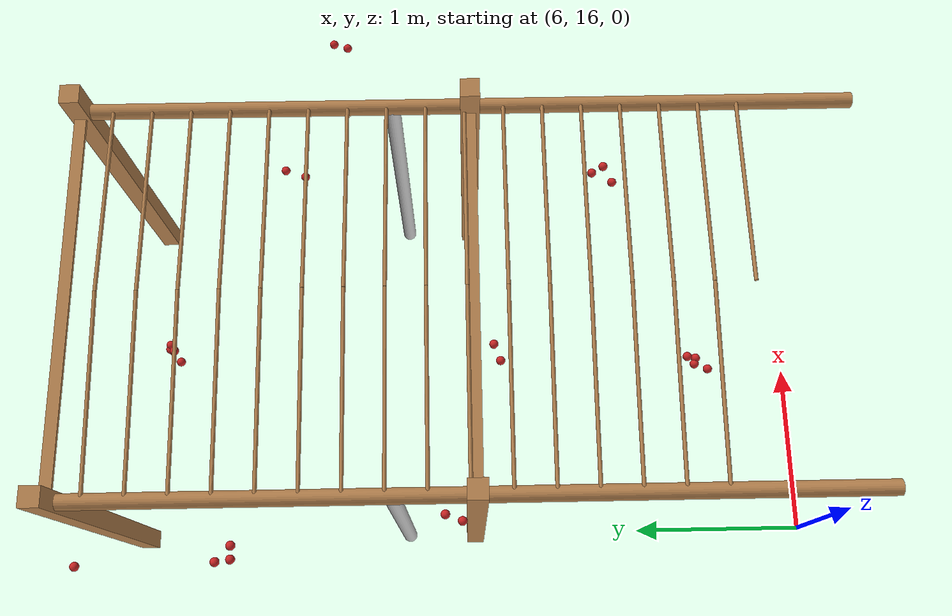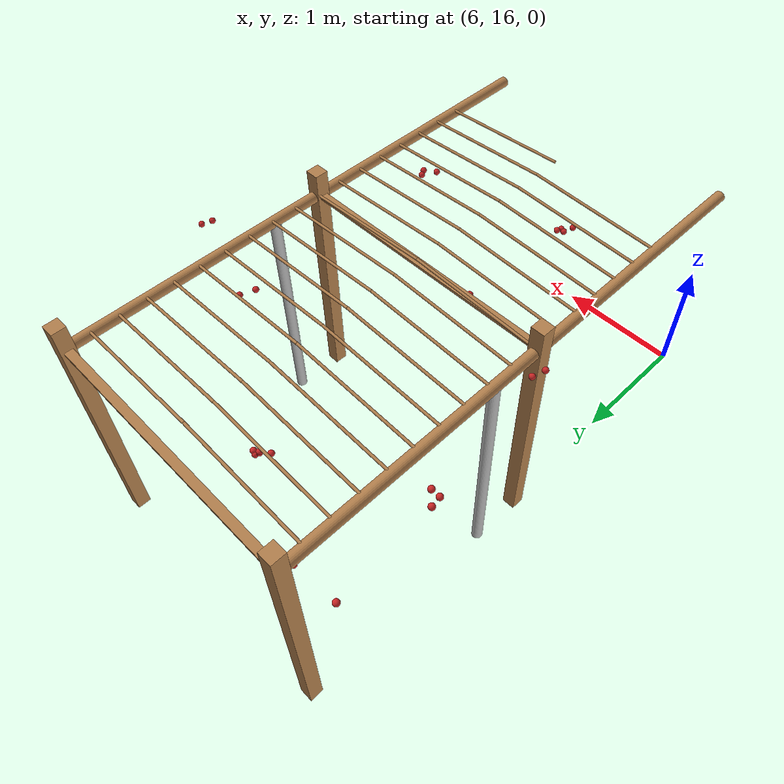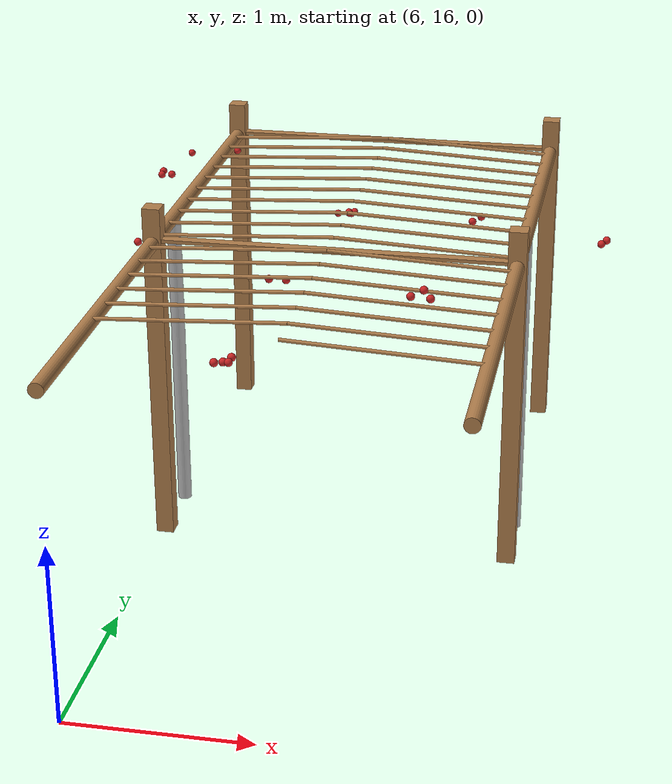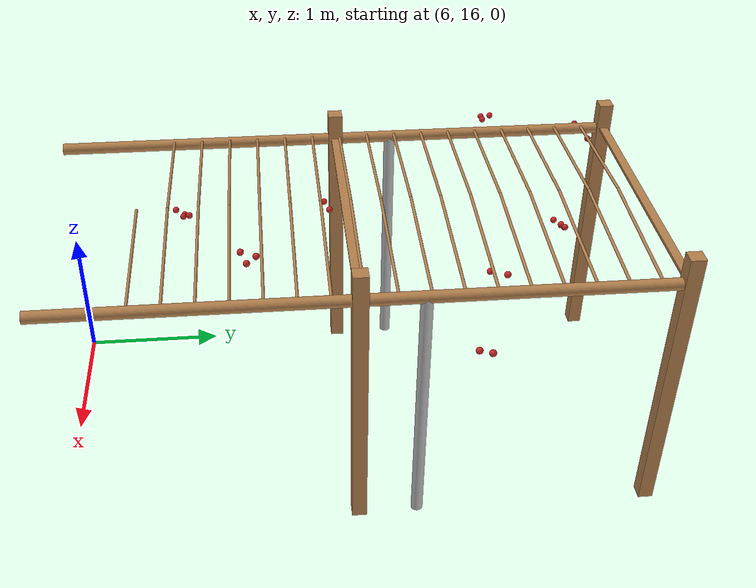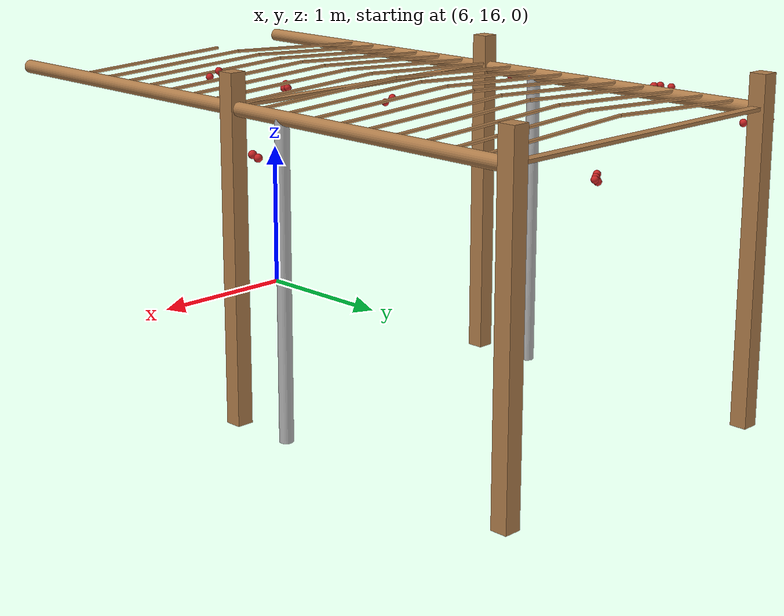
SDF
<sdf version="1.4">
 <model name="pergola">
  <include><name>post_42</name><pose>6.0 18.0 0 0 0 0</pose><uri>model://post</uri></include>
  <include><name>post_43</name><pose>6.0 20.0 0 0 0 0</pose><uri>model://post</uri></include>
  <include><name>post_53</name><pose>8.0 18.0 0 0 0 0</pose><uri>model://post</uri></include>
  <include><name>post_54</name><pose>8.0 20.0 0 0 0 0</pose><uri>model://post</uri></include>
  <link name="beam_42">
   <pose>7.0 18.0 1.81 0 0 0</pose>
   <collision name="collision"><geometry><box><size>2.0 0.06 0.02</size></box></geometry></collision>
   <visual name="visual">
    <geometry><box><size>2.0 0.06 0.02</size></box></geometry>
    <material><script><name>Gazebo/Wood</name></script></material>
   </visual>
   <inertial>
    <mass>5</mass>
    <inertia>
     <ixx>0.0016666666666666668</ixx>
     <ixy>0.0</ixy>
     <ixz>0.0</ixz>
     <iyy>1.6681666666666664</iyy>
     <iyz>0.0</iyz>
     <izz>1.6668333333333332</izz>
    </inertia>
   </inertial>
  </link>
  <link name="beam_43">
   <pose>7.0 20.0 1.81 0 0 0</pose>
   <collision name="collision"><geometry><box><size>2.0 0.06 0.02</size></box></geometry></collision>
   <visual name="visual">
    <geometry><box><size>2.0 0.06 0.02</size></box></geometry>
    <material><script><name>Gazebo/Wood</name></script></material>
   </visual>
   <inertial>
    <mass>5</mass>
    <inertia>
     <ixx>0.0016666666666666668</ixx>
     <ixy>0.0</ixy>
     <ixz>0.0</ixz>
     <iyy>1.6681666666666664</iyy>
     <iyz>0.0</iyz>
     <izz>1.6668333333333332</izz>
    </inertia>
   </inertial>
  </link>
  <include><name>tree_39</name><pose>6.0 18.4 0 0 0 0</pose><uri>model://tree_trunk</uri></include>
  <include><name>tree_49</name><pose>8.0 18.4 0 0 0 0</pose><uri>model://tree_trunk</uri></include>
  <link name="baseBranch_38">
   <pose>6.0 17.0 1.8 1.5707963267948966 0 0</pose>
   <collision name="collision">
    <geometry><cylinder><radius>0.04</radius><length>1.94</length></cylinder></geometry>
   </collision>
   <visual name="visual">
    <geometry><cylinder><radius>0.04</radius><length>1.94</length></cylinder></geometry>
    <material><script><name>Gazebo/WoodFloor</name></script></material>
   </visual>
   <inertial>
    <mass>10</mass>
    <inertia>
     <ixx>3.140333333333333</ixx>
     <ixy>0.0</ixy>
     <ixz>0.0</ixz>
     <iyy>3.140333333333333</iyy>
     <iyz>0.0</iyz>
     <izz>0.008</izz>
    </inertia>
   </inertial>
  </link>
  <link name="baseBranch_39">
   <pose>6.0 19.0 1.8 1.5707963267948966 0 0</pose>
   <collision name="collision">
    <geometry><cylinder><radius>0.04</radius><length>1.94</length></cylinder></geometry>
   </collision>
   <visual name="visual">
    <geometry><cylinder><radius>0.04</radius><length>1.94</length></cylinder></geometry>
    <material><script><name>Gazebo/WoodFloor</name></script></material>
   </visual>
   <inertial>
    <mass>10</mass>
    <inertia>
     <ixx>3.140333333333333</ixx>
     <ixy>0.0</ixy>
     <ixz>0.0</ixz>
     <iyy>3.140333333333333</iyy>
     <iyz>0.0</iyz>
     <izz>0.008</izz>
    </inertia>
   </inertial>
  </link>
  <link name="baseBranch_48">
   <pose>8.0 17.0 1.8 1.5707963267948966 0 0</pose>
   <collision name="collision">
    <geometry><cylinder><radius>0.04</radius><length>1.94</length></cylinder></geometry>
   </collision>
   <visual name="visual">
    <geometry><cylinder><radius>0.04</radius><length>1.94</length></cylinder></geometry>
    <material><script><name>Gazebo/WoodFloor</name></script></material>
   </visual>
   <inertial>
    <mass>10</mass>
    <inertia>
     <ixx>3.140333333333333</ixx>
     <ixy>0.0</ixy>
     <ixz>0.0</ixz>
     <iyy>3.140333333333333</iyy>
     <iyz>0.0</iyz>
     <izz>0.008</izz>
    </inertia>
   </inertial>
  </link>
  <link name="baseBranch_49">
   <pose>8.0 19.0 1.8 1.5707963267948966 0 0</pose>
   <collision name="collision">
    <geometry><cylinder><radius>0.04</radius><length>1.94</length></cylinder></geometry>
   </collision>
   <visual name="visual">
    <geometry><cylinder><radius>0.04</radius><length>1.94</length></cylinder></geometry>
    <material><script><name>Gazebo/WoodFloor</name></script></material>
   </visual>
   <inertial>
    <mass>10</mass>
    <inertia>
     <ixx>3.140333333333333</ixx>
     <ixy>0.0</ixy>
     <ixz>0.0</ixz>
     <iyy>3.140333333333333</iyy>
     <iyz>0.0</iyz>
     <izz>0.008</izz>
    </inertia>
   </inertial>
  </link>
  <link name="vine_767">
   <pose>7.5 16.630000000000003 1.85 0 -1.5208379310729538 0</pose>
   <collision name="collision">
    <geometry><cylinder><radius>0.01</radius><length>1.0012492197250393</length></cylinder></geometry>
   </collision>
   <visual name="visual">
    <geometry><cylinder><radius>0.01</radius><length>1.0012492197250393</length></cylinder></geometry>
    <material><script><name>Gazebo/WoodFloor</name></script></material>
   </visual>
   <inertial>
    <mass>5</mass>
    <inertia>
     <ixx>0.41783333333333345</ixx>
     <ixy>0.0</ixy>
     <ixz>0.0</ixz>
     <iyy>0.41783333333333345</iyy>
     <iyz>0.0</iyz>
     <izz>0.00025</izz>
    </inertia>
   </inertial>
  </link>
  <link name="vine_768">
   <pose>6.5 16.830000000000002 1.85 0 1.5208379310729538 0</pose>
   <collision name="collision">
    <geometry><cylinder><radius>0.01</radius><length>1.0012492197250393</length></cylinder></geometry>
   </collision>
   <visual name="visual">
    <geometry><cylinder><radius>0.01</radius><length>1.0012492197250393</length></cylinder></geometry>
    <material><script><name>Gazebo/WoodFloor</name></script></material>
   </visual>
   <inertial>
    <mass>5</mass>
    <inertia>
     <ixx>0.41783333333333345</ixx>
     <ixy>0.0</ixy>
     <ixz>0.0</ixz>
     <iyy>0.41783333333333345</iyy>
     <iyz>0.0</iyz>
     <izz>0.00025</izz>
    </inertia>
   </inertial>
  </link>
  <link name="vine_769">
   <pose>7.5 16.830000000000002 1.85 0 -1.5208379310729538 0</pose>
   <collision name="collision">
    <geometry><cylinder><radius>0.01</radius><length>1.0012492197250393</length></cylinder></geometry>
   </collision>
   <visual name="visual">
    <geometry><cylinder><radius>0.01</radius><length>1.0012492197250393</length></cylinder></geometry>
    <material><script><name>Gazebo/WoodFloor</name></script></material>
   </visual>
   <inertial>
    <mass>5</mass>
    <inertia>
     <ixx>0.41783333333333345</ixx>
     <ixy>0.0</ixy>
     <ixz>0.0</ixz>
     <iyy>0.41783333333333345</iyy>
     <iyz>0.0</iyz>
     <izz>0.00025</izz>
    </inertia>
   </inertial>
  </link>
  <link name="vine_770">
   <pose>6.5 17.03 1.85 0 1.5208379310729538 0</pose>
   <collision name="collision">
    <geometry><cylinder><radius>0.01</radius><length>1.0012492197250393</length></cylinder></geometry>
   </collision>
   <visual name="visual">
    <geometry><cylinder><radius>0.01</radius><length>1.0012492197250393</length></cylinder></geometry>
    <material><script><name>Gazebo/WoodFloor</name></script></material>
   </visual>
   <inertial>
    <mass>5</mass>
    <inertia>
     <ixx>0.41783333333333345</ixx>
     <ixy>0.0</ixy>
     <ixz>0.0</ixz>
     <iyy>0.41783333333333345</iyy>
     <iyz>0.0</iyz>
     <izz>0.00025</izz>
    </inertia>
   </inertial>
  </link>
  <link name="vine_771">
   <pose>7.5 17.03 1.85 0 -1.5208379310729538 0</pose>
   <collision name="collision">
    <geometry><cylinder><radius>0.01</radius><length>1.0012492197250393</length></cylinder></geometry>
   </collision>
   <visual name="visual">
    <geometry><cylinder><radius>0.01</radius><length>1.0012492197250393</length></cylinder></geometry>
    <material><script><name>Gazebo/WoodFloor</name></script></material>
   </visual>
   <inertial>
    <mass>5</mass>
    <inertia>
     <ixx>0.41783333333333345</ixx>
     <ixy>0.0</ixy>
     <ixz>0.0</ixz>
     <iyy>0.41783333333333345</iyy>
     <iyz>0.0</iyz>
     <izz>0.00025</izz>
    </inertia>
   </inertial>
  </link>
  <link name="vine_772">
   <pose>6.5 17.23 1.85 0 1.5208379310729538 0</pose>
   <collision name="collision">
    <geometry><cylinder><radius>0.01</radius><length>1.0012492197250393</length></cylinder></geometry>
   </collision>
   <visual name="visual">
    <geometry><cylinder><radius>0.01</radius><length>1.0012492197250393</length></cylinder></geometry>
    <material><script><name>Gazebo/WoodFloor</name></script></material>
   </visual>
   <inertial>
    <mass>5</mass>
    <inertia>
     <ixx>0.41783333333333345</ixx>
     <ixy>0.0</ixy>
     <ixz>0.0</ixz>
     <iyy>0.41783333333333345</iyy>
     <iyz>0.0</iyz>
     <izz>0.00025</izz>
    </inertia>
   </inertial>
  </link>
  <link name="vine_773">
   <pose>7.5 17.23 1.85 0 -1.5208379310729538 0</pose>
   <collision name="collision">
    <geometry><cylinder><radius>0.01</radius><length>1.0012492197250393</length></cylinder></geometry>
   </collision>
   <visual name="visual">
    <geometry><cylinder><radius>0.01</radius><length>1.0012492197250393</length></cylinder></geometry>
    <material><script><name>Gazebo/WoodFloor</name></script></material>
   </visual>
   <inertial>
    <mass>5</mass>
    <inertia>
     <ixx>0.41783333333333345</ixx>
     <ixy>0.0</ixy>
     <ixz>0.0</ixz>
     <iyy>0.41783333333333345</iyy>
     <iyz>0.0</iyz>
     <izz>0.00025</izz>
    </inertia>
   </inertial>
  </link>
  <link name="vine_774">
   <pose>6.5 17.430000000000003 1.85 0 1.5208379310729538 0</pose>
   <collision name="collision">
    <geometry><cylinder><radius>0.01</radius><length>1.0012492197250393</length></cylinder></geometry>
   </collision>
   <visual name="visual">
    <geometry><cylinder><radius>0.01</radius><length>1.0012492197250393</length></cylinder></geometry>
    <material><script><name>Gazebo/WoodFloor</name></script></material>
   </visual>
   <inertial>
    <mass>5</mass>
    <inertia>
     <ixx>0.41783333333333345</ixx>
     <ixy>0.0</ixy>
     <ixz>0.0</ixz>
     <iyy>0.41783333333333345</iyy>
     <iyz>0.0</iyz>
     <izz>0.00025</izz>
    </inertia>
   </inertial>
  </link>
  <link name="vine_775">
   <pose>7.5 17.430000000000003 1.85 0 -1.5208379310729538 0</pose>
   <collision name="collision">
    <geometry><cylinder><radius>0.01</radius><length>1.0012492197250393</length></cylinder></geometry>
   </collision>
   <visual name="visual">
    <geometry><cylinder><radius>0.01</radius><length>1.0012492197250393</length></cylinder></geometry>
    <material><script><name>Gazebo/WoodFloor</name></script></material>
   </visual>
   <inertial>
    <mass>5</mass>
    <inertia>
     <ixx>0.41783333333333345</ixx>
     <ixy>0.0</ixy>
     <ixz>0.0</ixz>
     <iyy>0.41783333333333345</iyy>
     <iyz>0.0</iyz>
     <izz>0.00025</izz>
    </inertia>
   </inertial>
  </link>
  <link name="vine_776">
   <pose>6.5 17.630000000000003 1.85 0 1.5208379310729538 0</pose>
   <collision name="collision">
    <geometry><cylinder><radius>0.01</radius><length>1.0012492197250393</length></cylinder></geometry>
   </collision>
   <visual name="visual">
    <geometry><cylinder><radius>0.01</radius><length>1.0012492197250393</length></cylinder></geometry>
    <material><script><name>Gazebo/WoodFloor</name></script></material>
   </visual>
   <inertial>
    <mass>5</mass>
    <inertia>
     <ixx>0.41783333333333345</ixx>
     <ixy>0.0</ixy>
     <ixz>0.0</ixz>
     <iyy>0.41783333333333345</iyy>
     <iyz>0.0</iyz>
     <izz>0.00025</izz>
    </inertia>
   </inertial>
  </link>
  <link name="vine_777">
   <pose>7.5 17.630000000000003 1.85 0 -1.5208379310729538 0</pose>
   <collision name="collision">
    <geometry><cylinder><radius>0.01</radius><length>1.0012492197250393</length></cylinder></geometry>
   </collision>
   <visual name="visual">
    <geometry><cylinder><radius>0.01</radius><length>1.0012492197250393</length></cylinder></geometry>
    <material><script><name>Gazebo/WoodFloor</name></script></material>
   </visual>
   <inertial>
    <mass>5</mass>
    <inertia>
     <ixx>0.41783333333333345</ixx>
     <ixy>0.0</ixy>
     <ixz>0.0</ixz>
     <iyy>0.41783333333333345</iyy>
     <iyz>0.0</iyz>
     <izz>0.00025</izz>
    </inertia>
   </inertial>
  </link>
  <link name="vine_778">
   <pose>6.5 17.830000000000002 1.85 0 1.5208379310729538 0</pose>
   <collision name="collision">
    <geometry><cylinder><radius>0.01</radius><length>1.0012492197250393</length></cylinder></geometry>
   </collision>
   <visual name="visual">
    <geometry><cylinder><radius>0.01</radius><length>1.0012492197250393</length></cylinder></geometry>
    <material><script><name>Gazebo/WoodFloor</name></script></material>
   </visual>
   <inertial>
    <mass>5</mass>
    <inertia>
     <ixx>0.41783333333333345</ixx>
     <ixy>0.0</ixy>
     <ixz>0.0</ixz>
     <iyy>0.41783333333333345</iyy>
     <iyz>0.0</iyz>
     <izz>0.00025</izz>
    </inertia>
   </inertial>
  </link>
  <link name="vine_779">
   <pose>7.5 17.830000000000002 1.85 0 -1.5208379310729538 0</pose>
   <collision name="collision">
    <geometry><cylinder><radius>0.01</radius><length>1.0012492197250393</length></cylinder></geometry>
   </collision>
   <visual name="visual">
    <geometry><cylinder><radius>0.01</radius><length>1.0012492197250393</length></cylinder></geometry>
    <material><script><name>Gazebo/WoodFloor</name></script></material>
   </visual>
   <inertial>
    <mass>5</mass>
    <inertia>
     <ixx>0.41783333333333345</ixx>
     <ixy>0.0</ixy>
     <ixz>0.0</ixz>
     <iyy>0.41783333333333345</iyy>
     <iyz>0.0</iyz>
     <izz>0.00025</izz>
    </inertia>
   </inertial>
  </link>
  <link name="vine_780">
   <pose>6.5 18.03 1.85 0 1.5208379310729538 0</pose>
   <collision name="collision">
    <geometry><cylinder><radius>0.01</radius><length>1.0012492197250393</length></cylinder></geometry>
   </collision>
   <visual name="visual">
    <geometry><cylinder><radius>0.01</radius><length>1.0012492197250393</length></cylinder></geometry>
    <material><script><name>Gazebo/WoodFloor</name></script></material>
   </visual>
   <inertial>
    <mass>5</mass>
    <inertia>
     <ixx>0.41783333333333345</ixx>
     <ixy>0.0</ixy>
     <ixz>0.0</ixz>
     <iyy>0.41783333333333345</iyy>
     <iyz>0.0</iyz>
     <izz>0.00025</izz>
    </inertia>
   </inertial>
  </link>
  <link name="vine_781">
   <pose>7.5 18.03 1.85 0 -1.5208379310729538 0</pose>
   <collision name="collision">
    <geometry><cylinder><radius>0.01</radius><length>1.0012492197250393</length></cylinder></geometry>
   </collision>
   <visual name="visual">
    <geometry><cylinder><radius>0.01</radius><length>1.0012492197250393</length></cylinder></geometry>
    <material><script><name>Gazebo/WoodFloor</name></script></material>
   </visual>
   <inertial>
    <mass>5</mass>
    <inertia>
     <ixx>0.41783333333333345</ixx>
     <ixy>0.0</ixy>
     <ixz>0.0</ixz>
     <iyy>0.41783333333333345</iyy>
     <iyz>0.0</iyz>
     <izz>0.00025</izz>
    </inertia>
   </inertial>
  </link>
  <link name="vine_782">
   <pose>6.5 18.23 1.85 0 1.5208379310729538 0</pose>
   <collision name="collision">
    <geometry><cylinder><radius>0.01</radius><length>1.0012492197250393</length></cylinder></geometry>
   </collision>
   <visual name="visual">
    <geometry><cylinder><radius>0.01</radius><length>1.0012492197250393</length></cylinder></geometry>
    <material><script><name>Gazebo/WoodFloor</name></script></material>
   </visual>
   <inertial>
    <mass>5</mass>
    <inertia>
     <ixx>0.41783333333333345</ixx>
     <ixy>0.0</ixy>
     <ixz>0.0</ixz>
     <iyy>0.41783333333333345</iyy>
     <iyz>0.0</iyz>
     <izz>0.00025</izz>
    </inertia>
   </inertial>
  </link>
  <link name="vine_783">
   <pose>7.5 18.23 1.85 0 -1.5208379310729538 0</pose>
   <collision name="collision">
    <geometry><cylinder><radius>0.01</radius><length>1.0012492197250393</length></cylinder></geometry>
   </collision>
   <visual name="visual">
    <geometry><cylinder><radius>0.01</radius><length>1.0012492197250393</length></cylinder></geometry>
    <material><script><name>Gazebo/WoodFloor</name></script></material>
   </visual>
   <inertial>
    <mass>5</mass>
    <inertia>
     <ixx>0.41783333333333345</ixx>
     <ixy>0.0</ixy>
     <ixz>0.0</ixz>
     <iyy>0.41783333333333345</iyy>
     <iyz>0.0</iyz>
     <izz>0.00025</izz>
    </inertia>
   </inertial>
  </link>
  <link name="vine_784">
   <pose>6.5 18.430000000000003 1.85 0 1.5208379310729538 0</pose>
   <collision name="collision">
    <geometry><cylinder><radius>0.01</radius><length>1.0012492197250393</length></cylinder></geometry>
   </collision>
   <visual name="visual">
    <geometry><cylinder><radius>0.01</radius><length>1.0012492197250393</length></cylinder></geometry>
    <material><script><name>Gazebo/WoodFloor</name></script></material>
   </visual>
   <inertial>
    <mass>5</mass>
    <inertia>
     <ixx>0.41783333333333345</ixx>
     <ixy>0.0</ixy>
     <ixz>0.0</ixz>
     <iyy>0.41783333333333345</iyy>
     <iyz>0.0</iyz>
     <izz>0.00025</izz>
    </inertia>
   </inertial>
  </link>
  <link name="vine_785">
   <pose>7.5 18.430000000000003 1.85 0 -1.5208379310729538 0</pose>
   <collision name="collision">
    <geometry><cylinder><radius>0.01</radius><length>1.0012492197250393</length></cylinder></geometry>
   </collision>
   <visual name="visual">
    <geometry><cylinder><radius>0.01</radius><length>1.0012492197250393</length></cylinder></geometry>
    <material><script><name>Gazebo/WoodFloor</name></script></material>
   </visual>
   <inertial>
    <mass>5</mass>
    <inertia>
     <ixx>0.41783333333333345</ixx>
     <ixy>0.0</ixy>
     <ixz>0.0</ixz>
     <iyy>0.41783333333333345</iyy>
     <iyz>0.0</iyz>
     <izz>0.00025</izz>
    </inertia>
   </inertial>
  </link>
  <link name="vine_786">
   <pose>6.5 18.630000000000003 1.85 0 1.5208379310729538 0</pose>
   <collision name="collision">
    <geometry><cylinder><radius>0.01</radius><length>1.0012492197250393</length></cylinder></geometry>
   </collision>
   <visual name="visual">
    <geometry><cylinder><radius>0.01</radius><length>1.0012492197250393</length></cylinder></geometry>
    <material><script><name>Gazebo/WoodFloor</name></script></material>
   </visual>
   <inertial>
    <mass>5</mass>
    <inertia>
     <ixx>0.41783333333333345</ixx>
     <ixy>0.0</ixy>
     <ixz>0.0</ixz>
     <iyy>0.41783333333333345</iyy>
     <iyz>0.0</iyz>
     <izz>0.00025</izz>
    </inertia>
   </inertial>
  </link>
  <link name="vine_787">
   <pose>7.5 18.630000000000003 1.85 0 -1.5208379310729538 0</pose>
   <collision name="collision">
    <geometry><cylinder><radius>0.01</radius><length>1.0012492197250393</length></cylinder></geometry>
   </collision>
   <visual name="visual">
    <geometry><cylinder><radius>0.01</radius><length>1.0012492197250393</length></cylinder></geometry>
    <material><script><name>Gazebo/WoodFloor</name></script></material>
   </visual>
   <inertial>
    <mass>5</mass>
    <inertia>
     <ixx>0.41783333333333345</ixx>
     <ixy>0.0</ixy>
     <ixz>0.0</ixz>
     <iyy>0.41783333333333345</iyy>
     <iyz>0.0</iyz>
     <izz>0.00025</izz>
    </inertia>
   </inertial>
  </link>
  <link name="vine_788">
   <pose>6.5 18.830000000000002 1.85 0 1.5208379310729538 0</pose>
   <collision name="collision">
    <geometry><cylinder><radius>0.01</radius><length>1.0012492197250393</length></cylinder></geometry>
   </collision>
   <visual name="visual">
    <geometry><cylinder><radius>0.01</radius><length>1.0012492197250393</length></cylinder></geometry>
    <material><script><name>Gazebo/WoodFloor</name></script></material>
   </visual>
   <inertial>
    <mass>5</mass>
    <inertia>
     <ixx>0.41783333333333345</ixx>
     <ixy>0.0</ixy>
     <ixz>0.0</ixz>
     <iyy>0.41783333333333345</iyy>
     <iyz>0.0</iyz>
     <izz>0.00025</izz>
    </inertia>
   </inertial>
  </link>
  <link name="vine_789">
   <pose>7.5 18.830000000000002 1.85 0 -1.5208379310729538 0</pose>
   <collision name="collision">
    <geometry><cylinder><radius>0.01</radius><length>1.0012492197250393</length></cylinder></geometry>
   </collision>
   <visual name="visual">
    <geometry><cylinder><radius>0.01</radius><length>1.0012492197250393</length></cylinder></geometry>
    <material><script><name>Gazebo/WoodFloor</name></script></material>
   </visual>
   <inertial>
    <mass>5</mass>
    <inertia>
     <ixx>0.41783333333333345</ixx>
     <ixy>0.0</ixy>
     <ixz>0.0</ixz>
     <iyy>0.41783333333333345</iyy>
     <iyz>0.0</iyz>
     <izz>0.00025</izz>
    </inertia>
   </inertial>
  </link>
  <link name="vine_790">
   <pose>6.5 19.03 1.85 0 1.5208379310729538 0</pose>
   <collision name="collision">
    <geometry><cylinder><radius>0.01</radius><length>1.0012492197250393</length></cylinder></geometry>
   </collision>
   <visual name="visual">
    <geometry><cylinder><radius>0.01</radius><length>1.0012492197250393</length></cylinder></geometry>
    <material><script><name>Gazebo/WoodFloor</name></script></material>
   </visual>
   <inertial>
    <mass>5</mass>
    <inertia>
     <ixx>0.41783333333333345</ixx>
     <ixy>0.0</ixy>
     <ixz>0.0</ixz>
     <iyy>0.41783333333333345</iyy>
     <iyz>0.0</iyz>
     <izz>0.00025</izz>
    </inertia>
   </inertial>
  </link>
  <link name="vine_791">
   <pose>7.5 19.03 1.85 0 -1.5208379310729538 0</pose>
   <collision name="collision">
    <geometry><cylinder><radius>0.01</radius><length>1.0012492197250393</length></cylinder></geometry>
   </collision>
   <visual name="visual">
    <geometry><cylinder><radius>0.01</radius><length>1.0012492197250393</length></cylinder></geometry>
    <material><script><name>Gazebo/WoodFloor</name></script></material>
   </visual>
   <inertial>
    <mass>5</mass>
    <inertia>
     <ixx>0.41783333333333345</ixx>
     <ixy>0.0</ixy>
     <ixz>0.0</ixz>
     <iyy>0.41783333333333345</iyy>
     <iyz>0.0</iyz>
     <izz>0.00025</izz>
    </inertia>
   </inertial>
  </link>
  <link name="vine_792">
   <pose>6.5 19.230000000000004 1.85 0 1.5208379310729538 0</pose>
   <collision name="collision">
    <geometry><cylinder><radius>0.01</radius><length>1.0012492197250393</length></cylinder></geometry>
   </collision>
   <visual name="visual">
    <geometry><cylinder><radius>0.01</radius><length>1.0012492197250393</length></cylinder></geometry>
    <material><script><name>Gazebo/WoodFloor</name></script></material>
   </visual>
   <inertial>
    <mass>5</mass>
    <inertia>
     <ixx>0.41783333333333345</ixx>
     <ixy>0.0</ixy>
     <ixz>0.0</ixz>
     <iyy>0.41783333333333345</iyy>
     <iyz>0.0</iyz>
     <izz>0.00025</izz>
    </inertia>
   </inertial>
  </link>
  <link name="vine_793">
   <pose>7.5 19.230000000000004 1.85 0 -1.5208379310729538 0</pose>
   <collision name="collision">
    <geometry><cylinder><radius>0.01</radius><length>1.0012492197250393</length></cylinder></geometry>
   </collision>
   <visual name="visual">
    <geometry><cylinder><radius>0.01</radius><length>1.0012492197250393</length></cylinder></geometry>
    <material><script><name>Gazebo/WoodFloor</name></script></material>
   </visual>
   <inertial>
    <mass>5</mass>
    <inertia>
     <ixx>0.41783333333333345</ixx>
     <ixy>0.0</ixy>
     <ixz>0.0</ixz>
     <iyy>0.41783333333333345</iyy>
     <iyz>0.0</iyz>
     <izz>0.00025</izz>
    </inertia>
   </inertial>
  </link>
  <link name="vine_794">
   <pose>6.5 19.430000000000003 1.85 0 1.5208379310729538 0</pose>
   <collision name="collision">
    <geometry><cylinder><radius>0.01</radius><length>1.0012492197250393</length></cylinder></geometry>
   </collision>
   <visual name="visual">
    <geometry><cylinder><radius>0.01</radius><length>1.0012492197250393</length></cylinder></geometry>
    <material><script><name>Gazebo/WoodFloor</name></script></material>
   </visual>
   <inertial>
    <mass>5</mass>
    <inertia>
     <ixx>0.41783333333333345</ixx>
     <ixy>0.0</ixy>
     <ixz>0.0</ixz>
     <iyy>0.41783333333333345</iyy>
     <iyz>0.0</iyz>
     <izz>0.00025</izz>
    </inertia>
   </inertial>
  </link>
  <link name="vine_795">
   <pose>7.5 19.430000000000003 1.85 0 -1.5208379310729538 0</pose>
   <collision name="collision">
    <geometry><cylinder><radius>0.01</radius><length>1.0012492197250393</length></cylinder></geometry>
   </collision>
   <visual name="visual">
    <geometry><cylinder><radius>0.01</radius><length>1.0012492197250393</length></cylinder></geometry>
    <material><script><name>Gazebo/WoodFloor</name></script></material>
   </visual>
   <inertial>
    <mass>5</mass>
    <inertia>
     <ixx>0.41783333333333345</ixx>
     <ixy>0.0</ixy>
     <ixz>0.0</ixz>
     <iyy>0.41783333333333345</iyy>
     <iyz>0.0</iyz>
     <izz>0.00025</izz>
    </inertia>
   </inertial>
  </link>
  <link name="vine_796">
   <pose>6.5 19.630000000000003 1.85 0 1.5208379310729538 0</pose>
   <collision name="collision">
    <geometry><cylinder><radius>0.01</radius><length>1.0012492197250393</length></cylinder></geometry>
   </collision>
   <visual name="visual">
    <geometry><cylinder><radius>0.01</radius><length>1.0012492197250393</length></cylinder></geometry>
    <material><script><name>Gazebo/WoodFloor</name></script></material>
   </visual>
   <inertial>
    <mass>5</mass>
    <inertia>
     <ixx>0.41783333333333345</ixx>
     <ixy>0.0</ixy>
     <ixz>0.0</ixz>
     <iyy>0.41783333333333345</iyy>
     <iyz>0.0</iyz>
     <izz>0.00025</izz>
    </inertia>
   </inertial>
  </link>
  <link name="vine_797">
   <pose>7.5 19.630000000000003 1.85 0 -1.5208379310729538 0</pose>
   <collision name="collision">
    <geometry><cylinder><radius>0.01</radius><length>1.0012492197250393</length></cylinder></geometry>
   </collision>
   <visual name="visual">
    <geometry><cylinder><radius>0.01</radius><length>1.0012492197250393</length></cylinder></geometry>
    <material><script><name>Gazebo/WoodFloor</name></script></material>
   </visual>
   <inertial>
    <mass>5</mass>
    <inertia>
     <ixx>0.41783333333333345</ixx>
     <ixy>0.0</ixy>
     <ixz>0.0</ixz>
     <iyy>0.41783333333333345</iyy>
     <iyz>0.0</iyz>
     <izz>0.00025</izz>
    </inertia>
   </inertial>
  </link>
  <link name="vine_798">
   <pose>6.5 19.830000000000002 1.85 0 1.5208379310729538 0</pose>
   <collision name="collision">
    <geometry><cylinder><radius>0.01</radius><length>1.0012492197250393</length></cylinder></geometry>
   </collision>
   <visual name="visual">
    <geometry><cylinder><radius>0.01</radius><length>1.0012492197250393</length></cylinder></geometry>
    <material><script><name>Gazebo/WoodFloor</name></script></material>
   </visual>
   <inertial>
    <mass>5</mass>
    <inertia>
     <ixx>0.41783333333333345</ixx>
     <ixy>0.0</ixy>
     <ixz>0.0</ixz>
     <iyy>0.41783333333333345</iyy>
     <iyz>0.0</iyz>
     <izz>0.00025</izz>
    </inertia>
   </inertial>
  </link>
  <link name="vine_799">
   <pose>7.5 19.830000000000002 1.85 0 -1.5208379310729538 0</pose>
   <collision name="collision">
    <geometry><cylinder><radius>0.01</radius><length>1.0012492197250393</length></cylinder></geometry>
   </collision>
   <visual name="visual">
    <geometry><cylinder><radius>0.01</radius><length>1.0012492197250393</length></cylinder></geometry>
    <material><script><name>Gazebo/WoodFloor</name></script></material>
   </visual>
   <inertial>
    <mass>5</mass>
    <inertia>
     <ixx>0.41783333333333345</ixx>
     <ixy>0.0</ixy>
     <ixz>0.0</ixz>
     <iyy>0.41783333333333345</iyy>
     <iyz>0.0</iyz>
     <izz>0.00025</izz>
    </inertia>
   </inertial>
  </link>
  <link name="fruit_60">
   <pose>5.885619134418993 18.07121515623541 1.7597549471167186 0 0 0</pose>
   <collision name="fruit_collision_60"><geometry><sphere><radius>0.022</radius></sphere></geometry></collision>
   <visual name="visual">
    <geometry><sphere><radius>0.022</radius></sphere></geometry>
    <material><script><name>Gazebo/Red</name></script></material>
   </visual>
   <inertial>
    <mass>0.05</mass>
    <inertia>
     <ixx>9.679999999999999e-06</ixx>
     <ixy>0.0</ixy>
     <ixz>0.0</ixz>
     <iyy>9.679999999999999e-06</iyy>
     <iyz>0.0</iyz>
     <izz>9.679999999999999e-06</izz>
    </inertia>
   </inertial>
   <sensor name="fruit_contact_60" type="contact">
    <contact><collision>fruit_collision_60</collision></contact>
   </sensor>
  </link>
  <link name="fruit_67">
   <pose>7.65446414056828 18.850814152408343 1.7155790796054742 0 0 0</pose>
   <collision name="fruit_collision_67"><geometry><sphere><radius>0.022</radius></sphere></geometry></collision>
   <visual name="visual">
    <geometry><sphere><radius>0.022</radius></sphere></geometry>
    <material><script><name>Gazebo/Red</name></script></material>
   </visual>
   <inertial>
    <mass>0.05</mass>
    <inertia>
     <ixx>9.679999999999999e-06</ixx>
     <ixy>0.0</ixy>
     <ixz>0.0</ixz>
     <iyy>9.679999999999999e-06</iyy>
     <iyz>0.0</iyz>
     <izz>9.679999999999999e-06</izz>
    </inertia>
   </inertial>
   <sensor name="fruit_contact_67" type="contact">
    <contact><collision>fruit_collision_67</collision></contact>
   </sensor>
  </link>
  <link name="fruit_79">
   <pose>8.406261207669543 18.64663323773124 1.704109743943472 0 0 0</pose>
   <collision name="fruit_collision_79"><geometry><sphere><radius>0.022</radius></sphere></geometry></collision>
   <visual name="visual">
    <geometry><sphere><radius>0.022</radius></sphere></geometry>
    <material><script><name>Gazebo/Red</name></script></material>
   </visual>
   <inertial>
    <mass>0.05</mass>
    <inertia>
     <ixx>9.679999999999999e-06</ixx>
     <ixy>0.0</ixy>
     <ixz>0.0</ixz>
     <iyy>9.679999999999999e-06</iyy>
     <iyz>0.0</iyz>
     <izz>9.679999999999999e-06</izz>
    </inertia>
   </inertial>
   <sensor name="fruit_contact_79" type="contact">
    <contact><collision>fruit_collision_79</collision></contact>
   </sensor>
  </link>
  <link name="fruit_126">
   <pose>6.010010034891983 19.901496831050288 1.714236325462069 0 0 0</pose>
   <collision name="fruit_collision_126"><geometry><sphere><radius>0.022</radius></sphere></geometry></collision>
   <visual name="visual">
    <geometry><sphere><radius>0.022</radius></sphere></geometry>
    <material><script><name>Gazebo/Red</name></script></material>
   </visual>
   <inertial>
    <mass>0.05</mass>
    <inertia>
     <ixx>9.679999999999999e-06</ixx>
     <ixy>0.0</ixy>
     <ixz>0.0</ixz>
     <iyy>9.679999999999999e-06</iyy>
     <iyz>0.0</iyz>
     <izz>9.679999999999999e-06</izz>
    </inertia>
   </inertial>
   <sensor name="fruit_contact_126" type="contact">
    <contact><collision>fruit_collision_126</collision></contact>
   </sensor>
  </link>
  <link name="fruit_185">
   <pose>6.671933774932143 17.87173916710432 1.6733338955615313 0 0 0</pose>
   <collision name="fruit_collision_185"><geometry><sphere><radius>0.022</radius></sphere></geometry></collision>
   <visual name="visual">
    <geometry><sphere><radius>0.022</radius></sphere></geometry>
    <material><script><name>Gazebo/Red</name></script></material>
   </visual>
   <inertial>
    <mass>0.05</mass>
    <inertia>
     <ixx>9.679999999999999e-06</ixx>
     <ixy>0.0</ixy>
     <ixz>0.0</ixz>
     <iyy>9.679999999999999e-06</iyy>
     <iyz>0.0</iyz>
     <izz>9.679999999999999e-06</izz>
    </inertia>
   </inertial>
   <sensor name="fruit_contact_185" type="contact">
    <contact><collision>fruit_collision_185</collision></contact>
   </sensor>
  </link>
  <link name="fruit_194">
   <pose>7.530711350213598 17.30007626395315 1.865368684507663 0 0 0</pose>
   <collision name="fruit_collision_194"><geometry><sphere><radius>0.022</radius></sphere></geometry></collision>
   <visual name="visual">
    <geometry><sphere><radius>0.022</radius></sphere></geometry>
    <material><script><name>Gazebo/Red</name></script></material>
   </visual>
   <inertial>
    <mass>0.05</mass>
    <inertia>
     <ixx>9.679999999999999e-06</ixx>
     <ixy>0.0</ixy>
     <ixz>0.0</ixz>
     <iyy>9.679999999999999e-06</iyy>
     <iyz>0.0</iyz>
     <izz>9.679999999999999e-06</izz>
    </inertia>
   </inertial>
   <sensor name="fruit_contact_194" type="contact">
    <contact><collision>fruit_collision_194</collision></contact>
   </sensor>
  </link>
  <link name="fruit_196">
   <pose>6.622876649887278 16.84731195753837 1.6287073537015377 0 0 0</pose>
   <collision name="fruit_collision_196"><geometry><sphere><radius>0.022</radius></sphere></geometry></collision>
   <visual name="visual">
    <geometry><sphere><radius>0.022</radius></sphere></geometry>
    <material><script><name>Gazebo/Red</name></script></material>
   </visual>
   <inertial>
    <mass>0.05</mass>
    <inertia>
     <ixx>9.679999999999999e-06</ixx>
     <ixy>0.0</ixy>
     <ixz>0.0</ixz>
     <iyy>9.679999999999999e-06</iyy>
     <iyz>0.0</iyz>
     <izz>9.679999999999999e-06</izz>
    </inertia>
   </inertial>
   <sensor name="fruit_contact_196" type="contact">
    <contact><collision>fruit_collision_196</collision></contact>
   </sensor>
  </link>
  <link name="fruit_205">
   <pose>6.743655095534081 19.49465337861589 1.480230459133824 0 0 0</pose>
   <collision name="fruit_collision_205"><geometry><sphere><radius>0.022</radius></sphere></geometry></collision>
   <visual name="visual">
    <geometry><sphere><radius>0.022</radius></sphere></geometry>
    <material><script><name>Gazebo/Red</name></script></material>
   </visual>
   <inertial>
    <mass>0.05</mass>
    <inertia>
     <ixx>9.679999999999999e-06</ixx>
     <ixy>0.0</ixy>
     <ixz>0.0</ixz>
     <iyy>9.679999999999999e-06</iyy>
     <iyz>0.0</iyz>
     <izz>9.679999999999999e-06</izz>
    </inertia>
   </inertial>
   <sensor name="fruit_contact_205" type="contact">
    <contact><collision>fruit_collision_205</collision></contact>
   </sensor>
  </link>
  <link name="fruit_421">
   <pose>6.654438404186491 16.906282723142784 1.6084960541477815 0 0 0</pose>
   <collision name="fruit_collision_421"><geometry><sphere><radius>0.022</radius></sphere></geometry></collision>
   <visual name="visual">
    <geometry><sphere><radius>0.022</radius></sphere></geometry>
    <material><script><name>Gazebo/Red</name></script></material>
   </visual>
   <inertial>
    <mass>0.05</mass>
    <inertia>
     <ixx>9.679999999999999e-06</ixx>
     <ixy>0.0</ixy>
     <ixz>0.0</ixz>
     <iyy>9.679999999999999e-06</iyy>
     <iyz>0.0</iyz>
     <izz>9.679999999999999e-06</izz>
    </inertia>
   </inertial>
   <sensor name="fruit_contact_421" type="contact">
    <contact><collision>fruit_collision_421</collision></contact>
   </sensor>
  </link>
  <link name="fruit_532">
   <pose>6.836147916294222 19.554658622643593 1.4748991881761864 0 0 0</pose>
   <collision name="fruit_collision_532"><geometry><sphere><radius>0.022</radius></sphere></geometry></collision>
   <visual name="visual">
    <geometry><sphere><radius>0.022</radius></sphere></geometry>
    <material><script><name>Gazebo/Red</name></script></material>
   </visual>
   <inertial>
    <mass>0.05</mass>
    <inertia>
     <ixx>9.679999999999999e-06</ixx>
     <ixy>0.0</ixy>
     <ixz>0.0</ixz>
     <iyy>9.679999999999999e-06</iyy>
     <iyz>0.0</iyz>
     <izz>9.679999999999999e-06</izz>
    </inertia>
   </inertial>
   <sensor name="fruit_contact_532" type="contact">
    <contact><collision>fruit_collision_532</collision></contact>
   </sensor>
  </link>
  <link name="fruit_636">
   <pose>7.626633286503458 17.336112284601263 1.8447624633259896 0 0 0</pose>
   <collision name="fruit_collision_636"><geometry><sphere><radius>0.022</radius></sphere></geometry></collision>
   <visual name="visual">
    <geometry><sphere><radius>0.022</radius></sphere></geometry>
    <material><script><name>Gazebo/Red</name></script></material>
   </visual>
   <inertial>
    <mass>0.05</mass>
    <inertia>
     <ixx>9.679999999999999e-06</ixx>
     <ixy>0.0</ixy>
     <ixz>0.0</ixz>
     <iyy>9.679999999999999e-06</iyy>
     <iyz>0.0</iyz>
     <izz>9.679999999999999e-06</izz>
    </inertia>
   </inertial>
   <sensor name="fruit_contact_636" type="contact">
    <contact><collision>fruit_collision_636</collision></contact>
   </sensor>
  </link>
  <link name="fruit_696">
   <pose>5.919143414643805 18.151522820621043 1.7429251787322355 0 0 0</pose>
   <collision name="fruit_collision_696"><geometry><sphere><radius>0.022</radius></sphere></geometry></collision>
   <visual name="visual">
    <geometry><sphere><radius>0.022</radius></sphere></geometry>
    <material><script><name>Gazebo/Red</name></script></material>
   </visual>
   <inertial>
    <mass>0.05</mass>
    <inertia>
     <ixx>9.679999999999999e-06</ixx>
     <ixy>0.0</ixy>
     <ixz>0.0</ixz>
     <iyy>9.679999999999999e-06</iyy>
     <iyz>0.0</iyz>
     <izz>9.679999999999999e-06</izz>
    </inertia>
   </inertial>
   <sensor name="fruit_contact_696" type="contact">
    <contact><collision>fruit_collision_696</collision></contact>
   </sensor>
  </link>
  <link name="fruit_698">
   <pose>6.6841135422488955 16.89893949009335 1.6118685002216082 0 0 0</pose>
   <collision name="fruit_collision_698"><geometry><sphere><radius>0.022</radius></sphere></geometry></collision>
   <visual name="visual">
    <geometry><sphere><radius>0.022</radius></sphere></geometry>
    <material><script><name>Gazebo/Red</name></script></material>
   </visual>
   <inertial>
    <mass>0.05</mass>
    <inertia>
     <ixx>9.679999999999999e-06</ixx>
     <ixy>0.0</ixy>
     <ixz>0.0</ixz>
     <iyy>9.679999999999999e-06</iyy>
     <iyz>0.0</iyz>
     <izz>9.679999999999999e-06</izz>
    </inertia>
   </inertial>
   <sensor name="fruit_contact_698" type="contact">
    <contact><collision>fruit_collision_698</collision></contact>
   </sensor>
  </link>
  <link name="fruit_728">
   <pose>5.727256908589047 19.134913124566708 1.7898351576371838 0 0 0</pose>
   <collision name="fruit_collision_728"><geometry><sphere><radius>0.022</radius></sphere></geometry></collision>
   <visual name="visual">
    <geometry><sphere><radius>0.022</radius></sphere></geometry>
    <material><script><name>Gazebo/Red</name></script></material>
   </visual>
   <inertial>
    <mass>0.05</mass>
    <inertia>
     <ixx>9.679999999999999e-06</ixx>
     <ixy>0.0</ixy>
     <ixz>0.0</ixz>
     <iyy>9.679999999999999e-06</iyy>
     <iyz>0.0</iyz>
     <izz>9.679999999999999e-06</izz>
    </inertia>
   </inertial>
   <sensor name="fruit_contact_728" type="contact">
    <contact><collision>fruit_collision_728</collision></contact>
   </sensor>
  </link>
  <link name="fruit_767">
   <pose>8.432105752629214 18.71973622224255 1.700929226760718 0 0 0</pose>
   <collision name="fruit_collision_767"><geometry><sphere><radius>0.022</radius></sphere></geometry></collision>
   <visual name="visual">
    <geometry><sphere><radius>0.022</radius></sphere></geometry>
    <material><script><name>Gazebo/Red</name></script></material>
   </visual>
   <inertial>
    <mass>0.05</mass>
    <inertia>
     <ixx>9.679999999999999e-06</ixx>
     <ixy>0.0</ixy>
     <ixz>0.0</ixz>
     <iyy>9.679999999999999e-06</iyy>
     <iyz>0.0</iyz>
     <izz>9.679999999999999e-06</izz>
    </inertia>
   </inertial>
   <sensor name="fruit_contact_767" type="contact">
    <contact><collision>fruit_collision_767</collision></contact>
   </sensor>
  </link>
  <link name="fruit_815">
   <pose>6.816189278151558 19.55859265092346 1.4607720072922665 0 0 0</pose>
   <collision name="fruit_collision_815"><geometry><sphere><radius>0.022</radius></sphere></geometry></collision>
   <visual name="visual">
    <geometry><sphere><radius>0.022</radius></sphere></geometry>
    <material><script><name>Gazebo/Red</name></script></material>
   </visual>
   <inertial>
    <mass>0.05</mass>
    <inertia>
     <ixx>9.679999999999999e-06</ixx>
     <ixy>0.0</ixy>
     <ixz>0.0</ixz>
     <iyy>9.679999999999999e-06</iyy>
     <iyz>0.0</iyz>
     <izz>9.679999999999999e-06</izz>
    </inertia>
   </inertial>
   <sensor name="fruit_contact_815" type="contact">
    <contact><collision>fruit_collision_815</collision></contact>
   </sensor>
  </link>
  <link name="fruit_879">
   <pose>6.759848445557059 17.90271856171026 1.66099070667745 0 0 0</pose>
   <collision name="fruit_collision_879"><geometry><sphere><radius>0.022</radius></sphere></geometry></collision>
   <visual name="visual">
    <geometry><sphere><radius>0.022</radius></sphere></geometry>
    <material><script><name>Gazebo/Red</name></script></material>
   </visual>
   <inertial>
    <mass>0.05</mass>
    <inertia>
     <ixx>9.679999999999999e-06</ixx>
     <ixy>0.0</ixy>
     <ixz>0.0</ixz>
     <iyy>9.679999999999999e-06</iyy>
     <iyz>0.0</iyz>
     <izz>9.679999999999999e-06</izz>
    </inertia>
   </inertial>
   <sensor name="fruit_contact_879" type="contact">
    <contact><collision>fruit_collision_879</collision></contact>
   </sensor>
  </link>
  <link name="fruit_908">
   <pose>5.788573204861673 19.13523659032237 1.7947435180295568 0 0 0</pose>
   <collision name="fruit_collision_908"><geometry><sphere><radius>0.022</radius></sphere></geometry></collision>
   <visual name="visual">
    <geometry><sphere><radius>0.022</radius></sphere></geometry>
    <material><script><name>Gazebo/Red</name></script></material>
   </visual>
   <inertial>
    <mass>0.05</mass>
    <inertia>
     <ixx>9.679999999999999e-06</ixx>
     <ixy>0.0</ixy>
     <ixz>0.0</ixz>
     <iyy>9.679999999999999e-06</iyy>
     <iyz>0.0</iyz>
     <izz>9.679999999999999e-06</izz>
    </inertia>
   </inertial>
   <sensor name="fruit_contact_908" type="contact">
    <contact><collision>fruit_collision_908</collision></contact>
   </sensor>
  </link>
  <link name="fruit_914">
   <pose>7.583440156168821 17.396959600067557 1.8645832466514023 0 0 0</pose>
   <collision name="fruit_collision_914"><geometry><sphere><radius>0.022</radius></sphere></geometry></collision>
   <visual name="visual">
    <geometry><sphere><radius>0.022</radius></sphere></geometry>
    <material><script><name>Gazebo/Red</name></script></material>
   </visual>
   <inertial>
    <mass>0.05</mass>
    <inertia>
     <ixx>9.679999999999999e-06</ixx>
     <ixy>0.0</ixy>
     <ixz>0.0</ixz>
     <iyy>9.679999999999999e-06</iyy>
     <iyz>0.0</iyz>
     <izz>9.679999999999999e-06</izz>
    </inertia>
   </inertial>
   <sensor name="fruit_contact_914" type="contact">
    <contact><collision>fruit_collision_914</collision></contact>
   </sensor>
  </link>
  <link name="fruit_927">
   <pose>6.803156448967061 19.53416900384602 1.4785934932650189 0 0 0</pose>
   <collision name="fruit_collision_927"><geometry><sphere><radius>0.022</radius></sphere></geometry></collision>
   <visual name="visual">
    <geometry><sphere><radius>0.022</radius></sphere></geometry>
    <material><script><name>Gazebo/Red</name></script></material>
   </visual>
   <inertial>
    <mass>0.05</mass>
    <inertia>
     <ixx>9.679999999999999e-06</ixx>
     <ixy>0.0</ixy>
     <ixz>0.0</ixz>
     <iyy>9.679999999999999e-06</iyy>
     <iyz>0.0</iyz>
     <izz>9.679999999999999e-06</izz>
    </inertia>
   </inertial>
   <sensor name="fruit_contact_927" type="contact">
    <contact><collision>fruit_collision_927</collision></contact>
   </sensor>
  </link>
  <link name="fruit_950">
   <pose>6.80220068318302 19.53679027488505 1.4713914913212687 0 0 0</pose>
   <collision name="fruit_collision_950"><geometry><sphere><radius>0.022</radius></sphere></geometry></collision>
   <visual name="visual">
    <geometry><sphere><radius>0.022</radius></sphere></geometry>
    <material><script><name>Gazebo/Red</name></script></material>
   </visual>
   <inertial>
    <mass>0.05</mass>
    <inertia>
     <ixx>9.679999999999999e-06</ixx>
     <ixy>0.0</ixy>
     <ixz>0.0</ixz>
     <iyy>9.679999999999999e-06</iyy>
     <iyz>0.0</iyz>
     <izz>9.679999999999999e-06</izz>
    </inertia>
   </inertial>
   <sensor name="fruit_contact_950" type="contact">
    <contact><collision>fruit_collision_950</collision></contact>
   </sensor>
  </link>
  <link name="fruit_954">
   <pose>5.715157851592815 19.87763083473913 1.6898666347698126 0 0 0</pose>
   <collision name="fruit_collision_954"><geometry><sphere><radius>0.022</radius></sphere></geometry></collision>
   <visual name="visual">
    <geometry><sphere><radius>0.022</radius></sphere></geometry>
    <material><script><name>Gazebo/Red</name></script></material>
   </visual>
   <inertial>
    <mass>0.05</mass>
    <inertia>
     <ixx>9.679999999999999e-06</ixx>
     <ixy>0.0</ixy>
     <ixz>0.0</ixz>
     <iyy>9.679999999999999e-06</iyy>
     <iyz>0.0</iyz>
     <izz>9.679999999999999e-06</izz>
    </inertia>
   </inertial>
   <sensor name="fruit_contact_954" type="contact">
    <contact><collision>fruit_collision_954</collision></contact>
   </sensor>
  </link>
  <link name="fruit_956">
   <pose>7.69341339816801 18.953516596308557 1.7105934210138412 0 0 0</pose>
   <collision name="fruit_collision_956"><geometry><sphere><radius>0.022</radius></sphere></geometry></collision>
   <visual name="visual">
    <geometry><sphere><radius>0.022</radius></sphere></geometry>
    <material><script><name>Gazebo/Red</name></script></material>
   </visual>
   <inertial>
    <mass>0.05</mass>
    <inertia>
     <ixx>9.679999999999999e-06</ixx>
     <ixy>0.0</ixy>
     <ixz>0.0</ixz>
     <iyy>9.679999999999999e-06</iyy>
     <iyz>0.0</iyz>
     <izz>9.679999999999999e-06</izz>
    </inertia>
   </inertial>
   <sensor name="fruit_contact_956" type="contact">
    <contact><collision>fruit_collision_956</collision></contact>
   </sensor>
  </link>
  <link name="fruit_961">
   <pose>6.690334237426927 16.940900860184698 1.6213069483970564 0 0 0</pose>
   <collision name="fruit_collision_961"><geometry><sphere><radius>0.022</radius></sphere></geometry></collision>
   <visual name="visual">
    <geometry><sphere><radius>0.022</radius></sphere></geometry>
    <material><script><name>Gazebo/Red</name></script></material>
   </visual>
   <inertial>
    <mass>0.05</mass>
    <inertia>
     <ixx>9.679999999999999e-06</ixx>
     <ixy>0.0</ixy>
     <ixz>0.0</ixz>
     <iyy>9.679999999999999e-06</iyy>
     <iyz>0.0</iyz>
     <izz>9.679999999999999e-06</izz>
    </inertia>
   </inertial>
   <sensor name="fruit_contact_961" type="contact">
    <contact><collision>fruit_collision_961</collision></contact>
   </sensor>
  </link>
  <link name="fruit_965">
   <pose>5.717243671386876 19.205488386749526 1.7883311547112788 0 0 0</pose>
   <collision name="fruit_collision_965"><geometry><sphere><radius>0.022</radius></sphere></geometry></collision>
   <visual name="visual">
    <geometry><sphere><radius>0.022</radius></sphere></geometry>
    <material><script><name>Gazebo/Red</name></script></material>
   </visual>
   <inertial>
    <mass>0.05</mass>
    <inertia>
     <ixx>9.679999999999999e-06</ixx>
     <ixy>0.0</ixy>
     <ixz>0.0</ixz>
     <iyy>9.679999999999999e-06</iyy>
     <iyz>0.0</iyz>
     <izz>9.679999999999999e-06</izz>
    </inertia>
   </inertial>
   <sensor name="fruit_contact_965" type="contact">
    <contact><collision>fruit_collision_965</collision></contact>
   </sensor>
  </link>
 </model>
</sdf>
